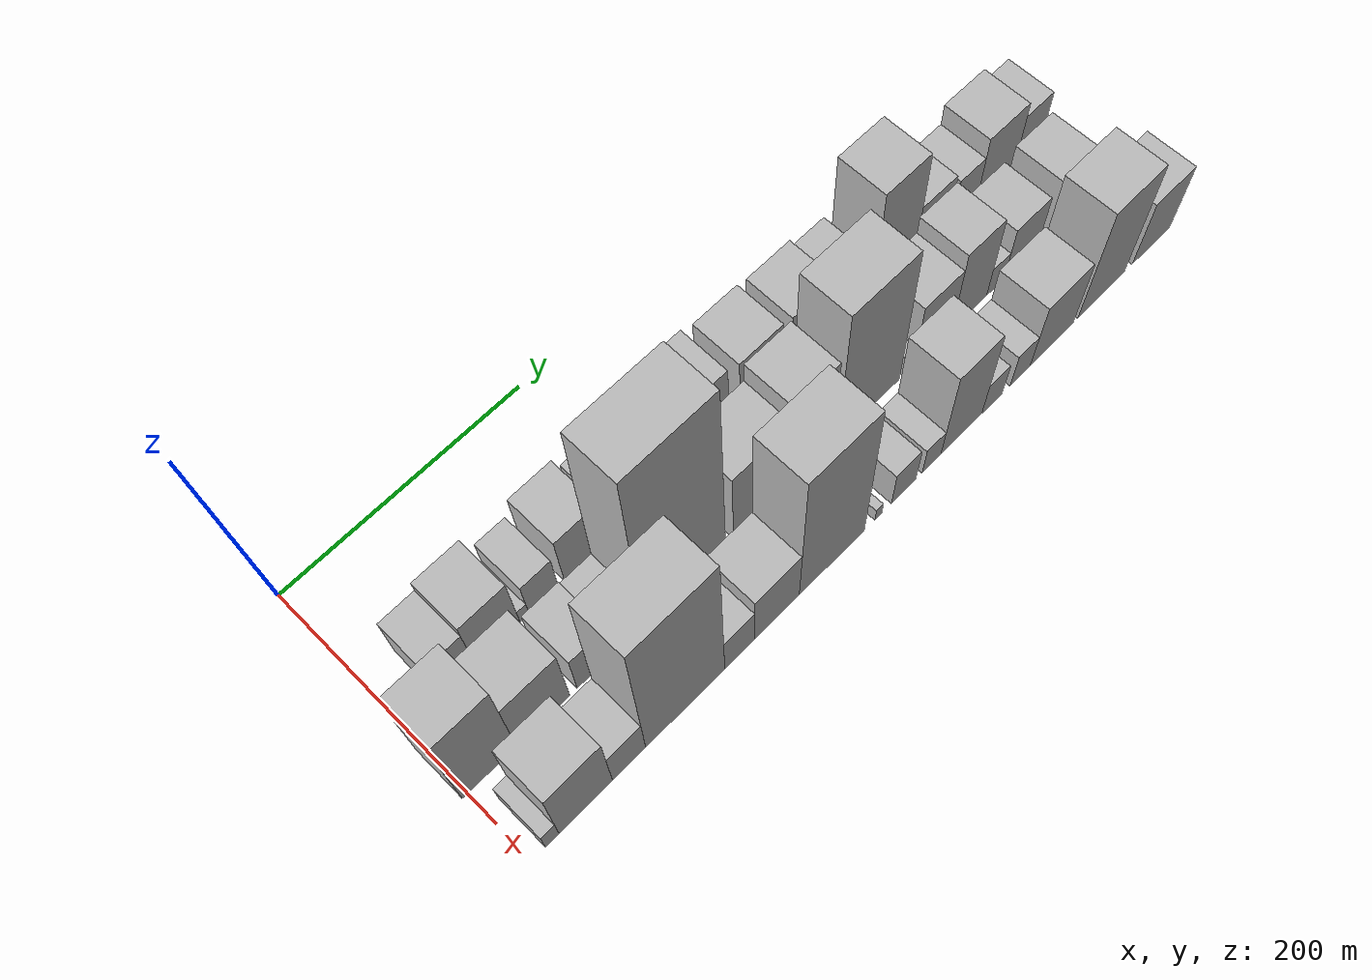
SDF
<sdf version="1.6">
 <world name="default">
  <model name="building_17">
   <static>1</static>
   <pose>100.0000 40.5990 0 0.000000 0.000000 0.000000</pose>
   <link name="link">
    <pose>0 0 27.00 0 0 0</pose>
    <collision name="collision"><geometry><box><size>40.0000 28.4353 54.0000</size></box></geometry></collision>
    <visual name="visual">
     <cast_shadows>0</cast_shadows>
     <geometry><box><size>40.0000 28.4353 54.0000</size></box></geometry>
     <material>
      <script>
       <uri>model://HANNAS_wall/materials/scripts</uri>
       <uri>model://HANNAS_wall/materials/textures</uri>
       <name>vrc/HANNAS_wall</name>
      </script>
     </material>
    </visual>
   </link>
  </model>
  <model name="building_18">
   <static>1</static>
   <pose>100.0000 73.1236 0 0.000000 0.000000 0.000000</pose>
   <link name="link">
    <pose>0 0 33.00 0 0 0</pose>
    <collision name="collision"><geometry><box><size>40.0000 36.6138 66.0000</size></box></geometry></collision>
    <visual name="visual">
     <cast_shadows>0</cast_shadows>
     <geometry><box><size>40.0000 36.6138 66.0000</size></box></geometry>
     <material>
      <script>
       <uri>model://HANNAS_wall/materials/scripts</uri>
       <uri>model://HANNAS_wall/materials/textures</uri>
       <name>vrc/HANNAS_wall</name>
      </script>
     </material>
    </visual>
   </link>
  </model>
  <model name="building_19">
   <static>1</static>
   <pose>100.0000 95.1760 0 0.000000 0.000000 0.000000</pose>
   <link name="link">
    <pose>0 0 9.00 0 0 0</pose>
    <collision name="collision"><geometry><box><size>40.0000 7.4911 18.0000</size></box></geometry></collision>
    <visual name="visual">
     <cast_shadows>0</cast_shadows>
     <geometry><box><size>40.0000 7.4911 18.0000</size></box></geometry>
     <material>
      <script>
       <uri>model://HANNAS_wall/materials/scripts</uri>
       <uri>model://HANNAS_wall/materials/textures</uri>
       <name>vrc/HANNAS_wall</name>
      </script>
     </material>
    </visual>
   </link>
  </model>
  <model name="building_20">
   <static>1</static>
   <pose>100.0000 111.1331 0 0.000000 0.000000 0.000000</pose>
   <link name="link">
    <pose>0 0 22.50 0 0 0</pose>
    <collision name="collision"><geometry><box><size>40.0000 24.4231 45.0000</size></box></geometry></collision>
    <visual name="visual">
     <cast_shadows>0</cast_shadows>
     <geometry><box><size>40.0000 24.4231 45.0000</size></box></geometry>
     <material>
      <script>
       <uri>model://HANNAS_wall/materials/scripts</uri>
       <uri>model://HANNAS_wall/materials/textures</uri>
       <name>vrc/HANNAS_wall</name>
      </script>
     </material>
    </visual>
   </link>
  </model>
  <model name="building_21">
   <static>1</static>
   <pose>100.0000 146.0212 0 0.000000 0.000000 0.000000</pose>
   <link name="link">
    <pose>0 0 31.50 0 0 0</pose>
    <collision name="collision"><geometry><box><size>40.0000 35.3532 63.0000</size></box></geometry></collision>
    <visual name="visual">
     <cast_shadows>0</cast_shadows>
     <geometry><box><size>40.0000 35.3532 63.0000</size></box></geometry>
     <material>
      <script>
       <uri>model://HANNAS_wall/materials/scripts</uri>
       <uri>model://HANNAS_wall/materials/textures</uri>
       <name>vrc/HANNAS_wall</name>
      </script>
     </material>
    </visual>
   </link>
  </model>
  <model name="building_22">
   <static>1</static>
   <pose>100.0000 181.5563 0 0.000000 0.000000 0.000000</pose>
   <link name="link">
    <pose>0 0 24.00 0 0 0</pose>
    <collision name="collision"><geometry><box><size>40.0000 25.7168 48.0000</size></box></geometry></collision>
    <visual name="visual">
     <cast_shadows>0</cast_shadows>
     <geometry><box><size>40.0000 25.7168 48.0000</size></box></geometry>
     <material>
      <script>
       <uri>model://HANNAS_wall/materials/scripts</uri>
       <uri>model://HANNAS_wall/materials/textures</uri>
       <name>vrc/HANNAS_wall</name>
      </script>
     </material>
    </visual>
   </link>
  </model>
  <model name="building_23">
   <static>1</static>
   <pose>100.0000 198.0065 0 0.000000 0.000000 0.000000</pose>
   <link name="link">
    <pose>0 0 7.50 0 0 0</pose>
    <collision name="collision"><geometry><box><size>40.0000 7.1837 15.0000</size></box></geometry></collision>
    <visual name="visual">
     <cast_shadows>0</cast_shadows>
     <geometry><box><size>40.0000 7.1837 15.0000</size></box></geometry>
     <material>
      <script>
       <uri>model://HANNAS_wall/materials/scripts</uri>
       <uri>model://HANNAS_wall/materials/textures</uri>
       <name>vrc/HANNAS_wall</name>
      </script>
     </material>
    </visual>
   </link>
  </model>
  <model name="building_24">
   <static>1</static>
   <pose>100.0000 214.8388 0 0.000000 0.000000 0.000000</pose>
   <link name="link">
    <pose>0 0 18.00 0 0 0</pose>
    <collision name="collision"><geometry><box><size>40.0000 20.4810 36.0000</size></box></geometry></collision>
    <visual name="visual">
     <cast_shadows>0</cast_shadows>
     <geometry><box><size>40.0000 20.4810 36.0000</size></box></geometry>
     <material>
      <script>
       <uri>model://HANNAS_wall/materials/scripts</uri>
       <uri>model://HANNAS_wall/materials/textures</uri>
       <name>vrc/HANNAS_wall</name>
      </script>
     </material>
    </visual>
   </link>
  </model>
  <model name="building_25">
   <static>1</static>
   <pose>100.0000 249.1997 0 0.000000 0.000000 0.000000</pose>
   <link name="link">
    <pose>0 0 40.50 0 0 0</pose>
    <collision name="collision"><geometry><box><size>40.0000 48.2407 81.0000</size></box></geometry></collision>
    <visual name="visual">
     <cast_shadows>0</cast_shadows>
     <geometry><box><size>40.0000 48.2407 81.0000</size></box></geometry>
     <material>
      <script>
       <uri>model://HANNAS_wall/materials/scripts</uri>
       <uri>model://HANNAS_wall/materials/textures</uri>
       <name>vrc/HANNAS_wall</name>
      </script>
     </material>
    </visual>
   </link>
  </model>
  <model name="building_26">
   <static>1</static>
   <pose>100.0000 302.8571 0 0.000000 0.000000 0.000000</pose>
   <link name="link">
    <pose>0 0 37.50 0 0 0</pose>
    <collision name="collision"><geometry><box><size>40.0000 39.0741 75.0000</size></box></geometry></collision>
    <visual name="visual">
     <cast_shadows>0</cast_shadows>
     <geometry><box><size>40.0000 39.0741 75.0000</size></box></geometry>
     <material>
      <script>
       <uri>model://HANNAS_wall/materials/scripts</uri>
       <uri>model://HANNAS_wall/materials/textures</uri>
       <name>vrc/HANNAS_wall</name>
      </script>
     </material>
    </visual>
   </link>
  </model>
  <model name="building_27">
   <static>1</static>
   <pose>100.0000 350.1309 0 0.000000 0.000000 0.000000</pose>
   <link name="link">
    <pose>0 0 36.00 0 0 0</pose>
    <collision name="collision"><geometry><box><size>40.0000 39.4736 72.0000</size></box></geometry></collision>
    <visual name="visual">
     <cast_shadows>0</cast_shadows>
     <geometry><box><size>40.0000 39.4736 72.0000</size></box></geometry>
     <material>
      <script>
       <uri>model://HANNAS_wall/materials/scripts</uri>
       <uri>model://HANNAS_wall/materials/textures</uri>
       <name>vrc/HANNAS_wall</name>
      </script>
     </material>
    </visual>
   </link>
  </model>
  <model name="building_28">
   <static>1</static>
   <pose>100.0000 385.9384 0 0.000000 0.000000 0.000000</pose>
   <link name="link">
    <pose>0 0 31.50 0 0 0</pose>
    <collision name="collision"><geometry><box><size>40.0000 32.1412 63.0000</size></box></geometry></collision>
    <visual name="visual">
     <cast_shadows>0</cast_shadows>
     <geometry><box><size>40.0000 32.1412 63.0000</size></box></geometry>
     <material>
      <script>
       <uri>model://HANNAS_wall/materials/scripts</uri>
       <uri>model://HANNAS_wall/materials/textures</uri>
       <name>vrc/HANNAS_wall</name>
      </script>
     </material>
    </visual>
   </link>
  </model>
  <model name="building_29">
   <static>1</static>
   <pose>100.0000 432.0686 0 0.000000 0.000000 0.000000</pose>
   <link name="link">
    <pose>0 0 60.00 0 0 0</pose>
    <collision name="collision"><geometry><box><size>40.0000 42.1192 120.0000</size></box></geometry></collision>
    <visual name="visual">
     <cast_shadows>0</cast_shadows>
     <geometry><box><size>40.0000 42.1192 120.0000</size></box></geometry>
     <material>
      <script>
       <uri>model://HANNAS_wall/materials/scripts</uri>
       <uri>model://HANNAS_wall/materials/textures</uri>
       <name>vrc/HANNAS_wall</name>
      </script>
     </material>
    </visual>
   </link>
  </model>
  <model name="building_30">
   <static>1</static>
   <pose>100.0000 470.4809 0 0.000000 0.000000 0.000000</pose>
   <link name="link">
    <pose>0 0 30.00 0 0 0</pose>
    <collision name="collision"><geometry><box><size>40.0000 34.7054 60.0000</size></box></geometry></collision>
    <visual name="visual">
     <cast_shadows>0</cast_shadows>
     <geometry><box><size>40.0000 34.7054 60.0000</size></box></geometry>
     <material>
      <script>
       <uri>model://HANNAS_wall/materials/scripts</uri>
       <uri>model://HANNAS_wall/materials/textures</uri>
       <name>vrc/HANNAS_wall</name>
      </script>
     </material>
    </visual>
   </link>
  </model>
  <model name="building_31">
   <static>1</static>
   <pose>100.0000 505.7154 0 0.000000 0.000000 0.000000</pose>
   <link name="link">
    <pose>0 0 24.00 0 0 0</pose>
    <collision name="collision"><geometry><box><size>40.0000 25.7636 48.0000</size></box></geometry></collision>
    <visual name="visual">
     <cast_shadows>0</cast_shadows>
     <geometry><box><size>40.0000 25.7636 48.0000</size></box></geometry>
     <material>
      <script>
       <uri>model://HANNAS_wall/materials/scripts</uri>
       <uri>model://HANNAS_wall/materials/textures</uri>
       <name>vrc/HANNAS_wall</name>
      </script>
     </material>
    </visual>
   </link>
  </model>
  <model name="building_32">
   <static>1</static>
   <pose>100.0000 539.0281 0 0.000000 0.000000 0.000000</pose>
   <link name="link">
    <pose>0 0 34.50 0 0 0</pose>
    <collision name="collision"><geometry><box><size>40.0000 40.8618 69.0000</size></box></geometry></collision>
    <visual name="visual">
     <cast_shadows>0</cast_shadows>
     <geometry><box><size>40.0000 40.8618 69.0000</size></box></geometry>
     <material>
      <script>
       <uri>model://HANNAS_wall/materials/scripts</uri>
       <uri>model://HANNAS_wall/materials/textures</uri>
       <name>vrc/HANNAS_wall</name>
      </script>
     </material>
    </visual>
   </link>
  </model>
  <model name="building_33">
   <static>1</static>
   <pose>100.0000 573.7321 0 0.000000 0.000000 0.000000</pose>
   <link name="link">
    <pose>0 0 27.00 0 0 0</pose>
    <collision name="collision"><geometry><box><size>40.0000 28.5462 54.0000</size></box></geometry></collision>
    <visual name="visual">
     <cast_shadows>0</cast_shadows>
     <geometry><box><size>40.0000 28.5462 54.0000</size></box></geometry>
     <material>
      <script>
       <uri>model://HANNAS_wall/materials/scripts</uri>
       <uri>model://HANNAS_wall/materials/textures</uri>
       <name>vrc/HANNAS_wall</name>
      </script>
     </material>
    </visual>
   </link>
  </model>
  <model name="building_48">
   <static>1</static>
   <pose>155.0000 17.2744 0 0.000000 0.000000 0.000000</pose>
   <link name="link">
    <pose>0 0 55.50 0 0 0</pose>
    <collision name="collision"><geometry><box><size>40.0000 42.6303 111.0000</size></box></geometry></collision>
    <visual name="visual">
     <cast_shadows>0</cast_shadows>
     <geometry><box><size>40.0000 42.6303 111.0000</size></box></geometry>
     <material>
      <script>
       <uri>model://HANNAS_wall/materials/scripts</uri>
       <uri>model://HANNAS_wall/materials/textures</uri>
       <name>vrc/HANNAS_wall</name>
      </script>
     </material>
    </visual>
   </link>
  </model>
  <model name="building_49">
   <static>1</static>
   <pose>155.0000 59.9571 0 0.000000 0.000000 0.000000</pose>
   <link name="link">
    <pose>0 0 37.50 0 0 0</pose>
    <collision name="collision"><geometry><box><size>40.0000 42.7352 75.0000</size></box></geometry></collision>
    <visual name="visual">
     <cast_shadows>0</cast_shadows>
     <geometry><box><size>40.0000 42.7352 75.0000</size></box></geometry>
     <material>
      <script>
       <uri>model://HANNAS_wall/materials/scripts</uri>
       <uri>model://HANNAS_wall/materials/textures</uri>
       <name>vrc/HANNAS_wall</name>
      </script>
     </material>
    </visual>
   </link>
  </model>
  <model name="building_50">
   <static>1</static>
   <pose>155.0000 102.0464 0 0.000000 0.000000 0.000000</pose>
   <link name="link">
    <pose>0 0 25.50 0 0 0</pose>
    <collision name="collision"><geometry><box><size>40.0000 29.4434 51.0000</size></box></geometry></collision>
    <visual name="visual">
     <cast_shadows>0</cast_shadows>
     <geometry><box><size>40.0000 29.4434 51.0000</size></box></geometry>
     <material>
      <script>
       <uri>model://HANNAS_wall/materials/scripts</uri>
       <uri>model://HANNAS_wall/materials/textures</uri>
       <name>vrc/HANNAS_wall</name>
      </script>
     </material>
    </visual>
   </link>
  </model>
  <model name="building_51">
   <static>1</static>
   <pose>155.0000 129.6999 0 0.000000 0.000000 0.000000</pose>
   <link name="link">
    <pose>0 0 24.00 0 0 0</pose>
    <collision name="collision"><geometry><box><size>40.0000 25.8635 48.0000</size></box></geometry></collision>
    <visual name="visual">
     <cast_shadows>0</cast_shadows>
     <geometry><box><size>40.0000 25.8635 48.0000</size></box></geometry>
     <material>
      <script>
       <uri>model://HANNAS_wall/materials/scripts</uri>
       <uri>model://HANNAS_wall/materials/textures</uri>
       <name>vrc/HANNAS_wall</name>
      </script>
     </material>
    </visual>
   </link>
  </model>
  <model name="building_52">
   <static>1</static>
   <pose>155.0000 178.2613 0 0.000000 0.000000 0.000000</pose>
   <link name="link">
    <pose>0 0 108.00 0 0 0</pose>
    <collision name="collision"><geometry><box><size>40.0000 71.2594 216.0000</size></box></geometry></collision>
    <visual name="visual">
     <cast_shadows>0</cast_shadows>
     <geometry><box><size>40.0000 71.2594 216.0000</size></box></geometry>
     <material>
      <script>
       <uri>model://HANNAS_wall/materials/scripts</uri>
       <uri>model://HANNAS_wall/materials/textures</uri>
       <name>vrc/HANNAS_wall</name>
      </script>
     </material>
    </visual>
   </link>
  </model>
  <model name="building_53">
   <static>1</static>
   <pose>155.0000 246.3855 0 0.000000 0.000000 0.000000</pose>
   <link name="link">
    <pose>0 0 45.00 0 0 0</pose>
    <collision name="collision"><geometry><box><size>40.0000 50.9890 90.0000</size></box></geometry></collision>
    <visual name="visual">
     <cast_shadows>0</cast_shadows>
     <geometry><box><size>40.0000 50.9890 90.0000</size></box></geometry>
     <material>
      <script>
       <uri>model://HANNAS_wall/materials/scripts</uri>
       <uri>model://HANNAS_wall/materials/textures</uri>
       <name>vrc/HANNAS_wall</name>
      </script>
     </material>
    </visual>
   </link>
  </model>
  <model name="building_54">
   <static>1</static>
   <pose>155.0000 291.8091 0 0.000000 0.000000 0.000000</pose>
   <link name="link">
    <pose>0 0 55.50 0 0 0</pose>
    <collision name="collision"><geometry><box><size>40.0000 39.8583 111.0000</size></box></geometry></collision>
    <visual name="visual">
     <cast_shadows>0</cast_shadows>
     <geometry><box><size>40.0000 39.8583 111.0000</size></box></geometry>
     <material>
      <script>
       <uri>model://HANNAS_wall/materials/scripts</uri>
       <uri>model://HANNAS_wall/materials/textures</uri>
       <name>vrc/HANNAS_wall</name>
      </script>
     </material>
    </visual>
   </link>
  </model>
  <model name="building_55">
   <static>1</static>
   <pose>155.0000 346.3446 0 0.000000 0.000000 0.000000</pose>
   <link name="link">
    <pose>0 0 79.50 0 0 0</pose>
    <collision name="collision"><geometry><box><size>40.0000 59.2126 159.0000</size></box></geometry></collision>
    <visual name="visual">
     <cast_shadows>0</cast_shadows>
     <geometry><box><size>40.0000 59.2126 159.0000</size></box></geometry>
     <material>
      <script>
       <uri>model://HANNAS_wall/materials/scripts</uri>
       <uri>model://HANNAS_wall/materials/textures</uri>
       <name>vrc/HANNAS_wall</name>
      </script>
     </material>
    </visual>
   </link>
  </model>
  <model name="building_56">
   <static>1</static>
   <pose>155.0000 385.2478 0 0.000000 0.000000 0.000000</pose>
   <link name="link">
    <pose>0 0 12.00 0 0 0</pose>
    <collision name="collision"><geometry><box><size>40.0000 10.5938 24.0000</size></box></geometry></collision>
    <visual name="visual">
     <cast_shadows>0</cast_shadows>
     <geometry><box><size>40.0000 10.5938 24.0000</size></box></geometry>
     <material>
      <script>
       <uri>model://HANNAS_wall/materials/scripts</uri>
       <uri>model://HANNAS_wall/materials/textures</uri>
       <name>vrc/HANNAS_wall</name>
      </script>
     </material>
    </visual>
   </link>
  </model>
  <model name="building_57">
   <static>1</static>
   <pose>155.0000 409.3539 0 0.000000 0.000000 0.000000</pose>
   <link name="link">
    <pose>0 0 37.50 0 0 0</pose>
    <collision name="collision"><geometry><box><size>40.0000 37.6185 75.0000</size></box></geometry></collision>
    <visual name="visual">
     <cast_shadows>0</cast_shadows>
     <geometry><box><size>40.0000 37.6185 75.0000</size></box></geometry>
     <material>
      <script>
       <uri>model://HANNAS_wall/materials/scripts</uri>
       <uri>model://HANNAS_wall/materials/textures</uri>
       <name>vrc/HANNAS_wall</name>
      </script>
     </material>
    </visual>
   </link>
  </model>
  <model name="building_58">
   <static>1</static>
   <pose>155.0000 446.0795 0 0.000000 0.000000 0.000000</pose>
   <link name="link">
    <pose>0 0 46.50 0 0 0</pose>
    <collision name="collision"><geometry><box><size>40.0000 35.8327 93.0000</size></box></geometry></collision>
    <visual name="visual">
     <cast_shadows>0</cast_shadows>
     <geometry><box><size>40.0000 35.8327 93.0000</size></box></geometry>
     <material>
      <script>
       <uri>model://HANNAS_wall/materials/scripts</uri>
       <uri>model://HANNAS_wall/materials/textures</uri>
       <name>vrc/HANNAS_wall</name>
      </script>
     </material>
    </visual>
   </link>
  </model>
  <model name="building_59">
   <static>1</static>
   <pose>155.0000 473.0778 0 0.000000 0.000000 0.000000</pose>
   <link name="link">
    <pose>0 0 16.50 0 0 0</pose>
    <collision name="collision"><geometry><box><size>40.0000 18.1639 33.0000</size></box></geometry></collision>
    <visual name="visual">
     <cast_shadows>0</cast_shadows>
     <geometry><box><size>40.0000 18.1639 33.0000</size></box></geometry>
     <material>
      <script>
       <uri>model://HANNAS_wall/materials/scripts</uri>
       <uri>model://HANNAS_wall/materials/textures</uri>
       <name>vrc/HANNAS_wall</name>
      </script>
     </material>
    </visual>
   </link>
  </model>
  <model name="building_60">
   <static>1</static>
   <pose>155.0000 499.7047 0 0.000000 0.000000 0.000000</pose>
   <link name="link">
    <pose>0 0 30.00 0 0 0</pose>
    <collision name="collision"><geometry><box><size>40.0000 35.0899 60.0000</size></box></geometry></collision>
    <visual name="visual">
     <cast_shadows>0</cast_shadows>
     <geometry><box><size>40.0000 35.0899 60.0000</size></box></geometry>
     <material>
      <script>
       <uri>model://HANNAS_wall/materials/scripts</uri>
       <uri>model://HANNAS_wall/materials/textures</uri>
       <name>vrc/HANNAS_wall</name>
      </script>
     </material>
    </visual>
   </link>
  </model>
  <model name="building_61">
   <static>1</static>
   <pose>155.0000 545.0269 0 0.000000 0.000000 0.000000</pose>
   <link name="link">
    <pose>0 0 34.50 0 0 0</pose>
    <collision name="collision"><geometry><box><size>40.0000 37.5546 69.0000</size></box></geometry></collision>
    <visual name="visual">
     <cast_shadows>0</cast_shadows>
     <geometry><box><size>40.0000 37.5546 69.0000</size></box></geometry>
     <material>
      <script>
       <uri>model://HANNAS_wall/materials/scripts</uri>
       <uri>model://HANNAS_wall/materials/textures</uri>
       <name>vrc/HANNAS_wall</name>
      </script>
     </material>
    </visual>
   </link>
  </model>
  <model name="building_78">
   <static>1</static>
   <pose>210.0000 16.0285 0 0.000000 0.000000 0.000000</pose>
   <link name="link">
    <pose>0 0 12.00 0 0 0</pose>
    <collision name="collision"><geometry><box><size>40.0000 10.6923 24.0000</size></box></geometry></collision>
    <visual name="visual">
     <cast_shadows>0</cast_shadows>
     <geometry><box><size>40.0000 10.6923 24.0000</size></box></geometry>
     <material>
      <script>
       <uri>model://HANNAS_wall/materials/scripts</uri>
       <uri>model://HANNAS_wall/materials/textures</uri>
       <name>vrc/HANNAS_wall</name>
      </script>
     </material>
    </visual>
   </link>
  </model>
  <model name="building_79">
   <static>1</static>
   <pose>210.0000 42.6008 0 0.000000 0.000000 0.000000</pose>
   <link name="link">
    <pose>0 0 40.50 0 0 0</pose>
    <collision name="collision"><geometry><box><size>40.0000 42.4522 81.0000</size></box></geometry></collision>
    <visual name="visual">
     <cast_shadows>0</cast_shadows>
     <geometry><box><size>40.0000 42.4522 81.0000</size></box></geometry>
     <material>
      <script>
       <uri>model://HANNAS_wall/materials/scripts</uri>
       <uri>model://HANNAS_wall/materials/textures</uri>
       <name>vrc/HANNAS_wall</name>
      </script>
     </material>
    </visual>
   </link>
  </model>
  <model name="building_80">
   <static>1</static>
   <pose>210.0000 77.3474 0 0.000000 0.000000 0.000000</pose>
   <link name="link">
    <pose>0 0 24.00 0 0 0</pose>
    <collision name="collision"><geometry><box><size>40.0000 27.0410 48.0000</size></box></geometry></collision>
    <visual name="visual">
     <cast_shadows>0</cast_shadows>
     <geometry><box><size>40.0000 27.0410 48.0000</size></box></geometry>
     <material>
      <script>
       <uri>model://HANNAS_wall/materials/scripts</uri>
       <uri>model://HANNAS_wall/materials/textures</uri>
       <name>vrc/HANNAS_wall</name>
      </script>
     </material>
    </visual>
   </link>
  </model>
  <model name="building_81">
   <static>1</static>
   <pose>210.0000 123.9784 0 0.000000 0.000000 0.000000</pose>
   <link name="link">
    <pose>0 0 88.50 0 0 0</pose>
    <collision name="collision"><geometry><box><size>40.0000 66.2211 177.0000</size></box></geometry></collision>
    <visual name="visual">
     <cast_shadows>0</cast_shadows>
     <geometry><box><size>40.0000 66.2211 177.0000</size></box></geometry>
     <material>
      <script>
       <uri>model://HANNAS_wall/materials/scripts</uri>
       <uri>model://HANNAS_wall/materials/textures</uri>
       <name>vrc/HANNAS_wall</name>
      </script>
     </material>
    </visual>
   </link>
  </model>
  <model name="building_82">
   <static>1</static>
   <pose>210.0000 170.0101 0 0.000000 0.000000 0.000000</pose>
   <link name="link">
    <pose>0 0 24.00 0 0 0</pose>
    <collision name="collision"><geometry><box><size>40.0000 25.8423 48.0000</size></box></geometry></collision>
    <visual name="visual">
     <cast_shadows>0</cast_shadows>
     <geometry><box><size>40.0000 25.8423 48.0000</size></box></geometry>
     <material>
      <script>
       <uri>model://HANNAS_wall/materials/scripts</uri>
       <uri>model://HANNAS_wall/materials/textures</uri>
       <name>vrc/HANNAS_wall</name>
      </script>
     </material>
    </visual>
   </link>
  </model>
  <model name="building_83">
   <static>1</static>
   <pose>210.0000 202.5936 0 0.000000 0.000000 0.000000</pose>
   <link name="link">
    <pose>0 0 33.00 0 0 0</pose>
    <collision name="collision"><geometry><box><size>40.0000 39.3247 66.0000</size></box></geometry></collision>
    <visual name="visual">
     <cast_shadows>0</cast_shadows>
     <geometry><box><size>40.0000 39.3247 66.0000</size></box></geometry>
     <material>
      <script>
       <uri>model://HANNAS_wall/materials/scripts</uri>
       <uri>model://HANNAS_wall/materials/textures</uri>
       <name>vrc/HANNAS_wall</name>
      </script>
     </material>
    </visual>
   </link>
  </model>
  <model name="building_84">
   <static>1</static>
   <pose>210.0000 251.8681 0 0.000000 0.000000 0.000000</pose>
   <link name="link">
    <pose>0 0 85.50 0 0 0</pose>
    <collision name="collision"><geometry><box><size>40.0000 59.2242 171.0000</size></box></geometry></collision>
    <visual name="visual">
     <cast_shadows>0</cast_shadows>
     <geometry><box><size>40.0000 59.2242 171.0000</size></box></geometry>
     <material>
      <script>
       <uri>model://HANNAS_wall/materials/scripts</uri>
       <uri>model://HANNAS_wall/materials/textures</uri>
       <name>vrc/HANNAS_wall</name>
      </script>
     </material>
    </visual>
   </link>
  </model>
  <model name="building_85">
   <static>1</static>
   <pose>210.0000 294.7572 0 0.000000 0.000000 0.000000</pose>
   <link name="link">
    <pose>0 0 7.50 0 0 0</pose>
    <collision name="collision"><geometry><box><size>40.0000 6.5542 15.0000</size></box></geometry></collision>
    <visual name="visual">
     <cast_shadows>0</cast_shadows>
     <geometry><box><size>40.0000 6.5542 15.0000</size></box></geometry>
     <material>
      <script>
       <uri>model://HANNAS_wall/materials/scripts</uri>
       <uri>model://HANNAS_wall/materials/textures</uri>
       <name>vrc/HANNAS_wall</name>
      </script>
     </material>
    </visual>
   </link>
  </model>
  <model name="building_86">
   <static>1</static>
   <pose>210.0000 318.5987 0 0.000000 0.000000 0.000000</pose>
   <link name="link">
    <pose>0 0 21.00 0 0 0</pose>
    <collision name="collision"><geometry><box><size>40.0000 23.1287 42.0000</size></box></geometry></collision>
    <visual name="visual">
     <cast_shadows>0</cast_shadows>
     <geometry><box><size>40.0000 23.1287 42.0000</size></box></geometry>
     <material>
      <script>
       <uri>model://HANNAS_wall/materials/scripts</uri>
       <uri>model://HANNAS_wall/materials/textures</uri>
       <name>vrc/HANNAS_wall</name>
      </script>
     </material>
    </visual>
   </link>
  </model>
  <model name="building_87">
   <static>1</static>
   <pose>210.0000 345.2052 0 0.000000 0.000000 0.000000</pose>
   <link name="link">
    <pose>0 0 16.50 0 0 0</pose>
    <collision name="collision"><geometry><box><size>40.0000 18.0843 33.0000</size></box></geometry></collision>
    <visual name="visual">
     <cast_shadows>0</cast_shadows>
     <geometry><box><size>40.0000 18.0843 33.0000</size></box></geometry>
     <material>
      <script>
       <uri>model://HANNAS_wall/materials/scripts</uri>
       <uri>model://HANNAS_wall/materials/textures</uri>
       <name>vrc/HANNAS_wall</name>
      </script>
     </material>
    </visual>
   </link>
  </model>
  <model name="building_88">
   <static>1</static>
   <pose>210.0000 374.3175 0 0.000000 0.000000 0.000000</pose>
   <link name="link">
    <pose>0 0 52.50 0 0 0</pose>
    <collision name="collision"><geometry><box><size>40.0000 40.1404 105.0000</size></box></geometry></collision>
    <visual name="visual">
     <cast_shadows>0</cast_shadows>
     <geometry><box><size>40.0000 40.1404 105.0000</size></box></geometry>
     <material>
      <script>
       <uri>model://HANNAS_wall/materials/scripts</uri>
       <uri>model://HANNAS_wall/materials/textures</uri>
       <name>vrc/HANNAS_wall</name>
      </script>
     </material>
    </visual>
   </link>
  </model>
  <model name="building_89">
   <static>1</static>
   <pose>210.0000 404.6372 0 0.000000 0.000000 0.000000</pose>
   <link name="link">
    <pose>0 0 19.50 0 0 0</pose>
    <collision name="collision"><geometry><box><size>40.0000 20.4990 39.0000</size></box></geometry></collision>
    <visual name="visual">
     <cast_shadows>0</cast_shadows>
     <geometry><box><size>40.0000 20.4990 39.0000</size></box></geometry>
     <material>
      <script>
       <uri>model://HANNAS_wall/materials/scripts</uri>
       <uri>model://HANNAS_wall/materials/textures</uri>
       <name>vrc/HANNAS_wall</name>
      </script>
     </material>
    </visual>
   </link>
  </model>
  <model name="building_90">
   <static>1</static>
   <pose>210.0000 433.1214 0 0.000000 0.000000 0.000000</pose>
   <link name="link">
    <pose>0 0 19.50 0 0 0</pose>
    <collision name="collision"><geometry><box><size>40.0000 20.4694 39.0000</size></box></geometry></collision>
    <visual name="visual">
     <cast_shadows>0</cast_shadows>
     <geometry><box><size>40.0000 20.4694 39.0000</size></box></geometry>
     <material>
      <script>
       <uri>model://HANNAS_wall/materials/scripts</uri>
       <uri>model://HANNAS_wall/materials/textures</uri>
       <name>vrc/HANNAS_wall</name>
      </script>
     </material>
    </visual>
   </link>
  </model>
  <model name="building_91">
   <static>1</static>
   <pose>210.0000 465.6598 0 0.000000 0.000000 0.000000</pose>
   <link name="link">
    <pose>0 0 37.50 0 0 0</pose>
    <collision name="collision"><geometry><box><size>40.0000 44.6072 75.0000</size></box></geometry></collision>
    <visual name="visual">
     <cast_shadows>0</cast_shadows>
     <geometry><box><size>40.0000 44.6072 75.0000</size></box></geometry>
     <material>
      <script>
       <uri>model://HANNAS_wall/materials/scripts</uri>
       <uri>model://HANNAS_wall/materials/textures</uri>
       <name>vrc/HANNAS_wall</name>
      </script>
     </material>
    </visual>
   </link>
  </model>
  <model name="building_92">
   <static>1</static>
   <pose>210.0000 517.7067 0 0.000000 0.000000 0.000000</pose>
   <link name="link">
    <pose>0 0 63.00 0 0 0</pose>
    <collision name="collision"><geometry><box><size>40.0000 49.4866 126.0000</size></box></geometry></collision>
    <visual name="visual">
     <cast_shadows>0</cast_shadows>
     <geometry><box><size>40.0000 49.4866 126.0000</size></box></geometry>
     <material>
      <script>
       <uri>model://HANNAS_wall/materials/scripts</uri>
       <uri>model://HANNAS_wall/materials/textures</uri>
       <name>vrc/HANNAS_wall</name>
      </script>
     </material>
    </visual>
   </link>
  </model>
  <model name="building_93">
   <static>1</static>
   <pose>210.0000 572.2539 0 0.000000 0.000000 0.000000</pose>
   <link name="link">
    <pose>0 0 36.00 0 0 0</pose>
    <collision name="collision"><geometry><box><size>40.0000 41.6078 72.0000</size></box></geometry></collision>
    <visual name="visual">
     <cast_shadows>0</cast_shadows>
     <geometry><box><size>40.0000 41.6078 72.0000</size></box></geometry>
     <material>
      <script>
       <uri>model://HANNAS_wall/materials/scripts</uri>
       <uri>model://HANNAS_wall/materials/textures</uri>
       <name>vrc/HANNAS_wall</name>
      </script>
     </material>
    </visual>
   </link>
  </model>
 </world>
</sdf>
